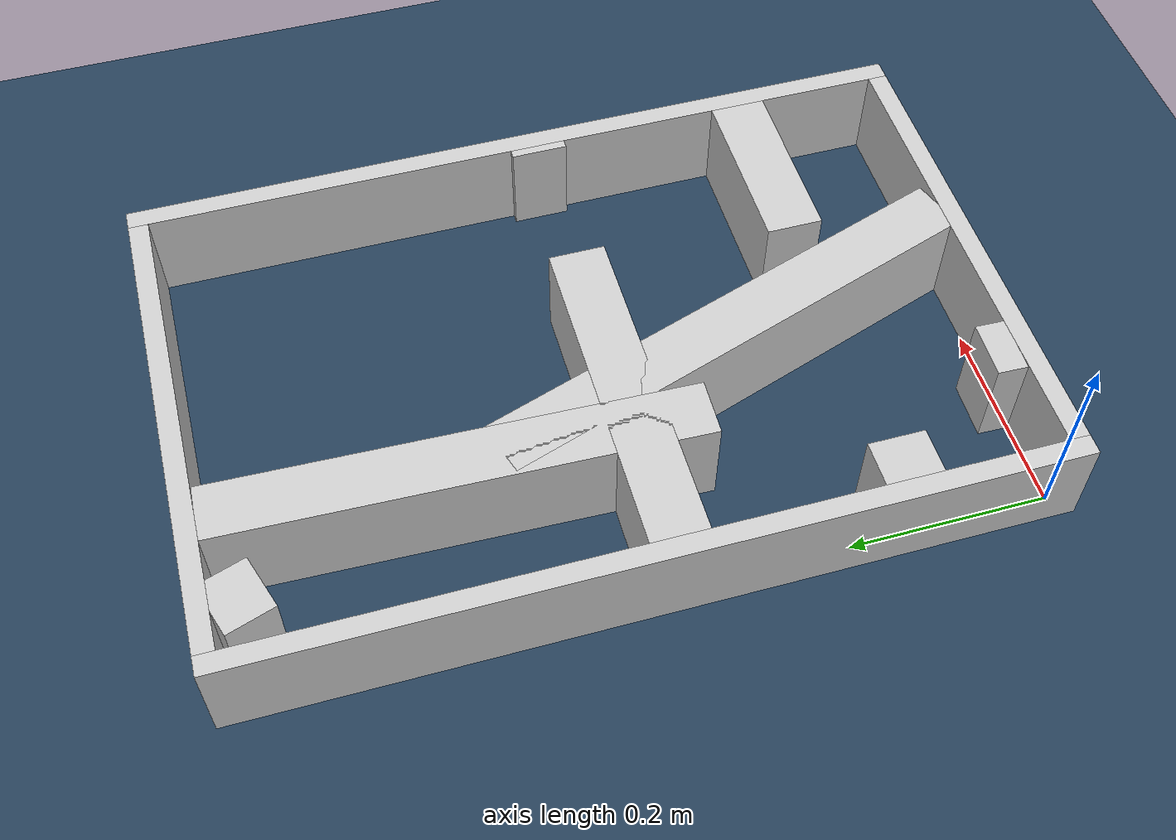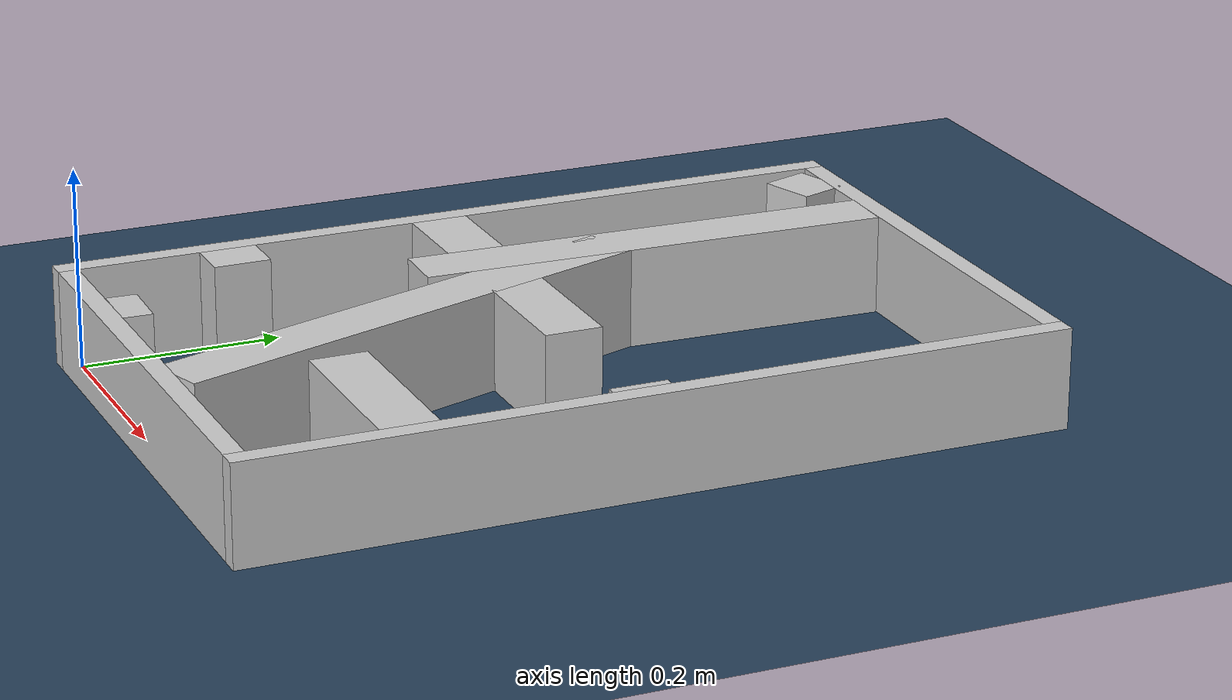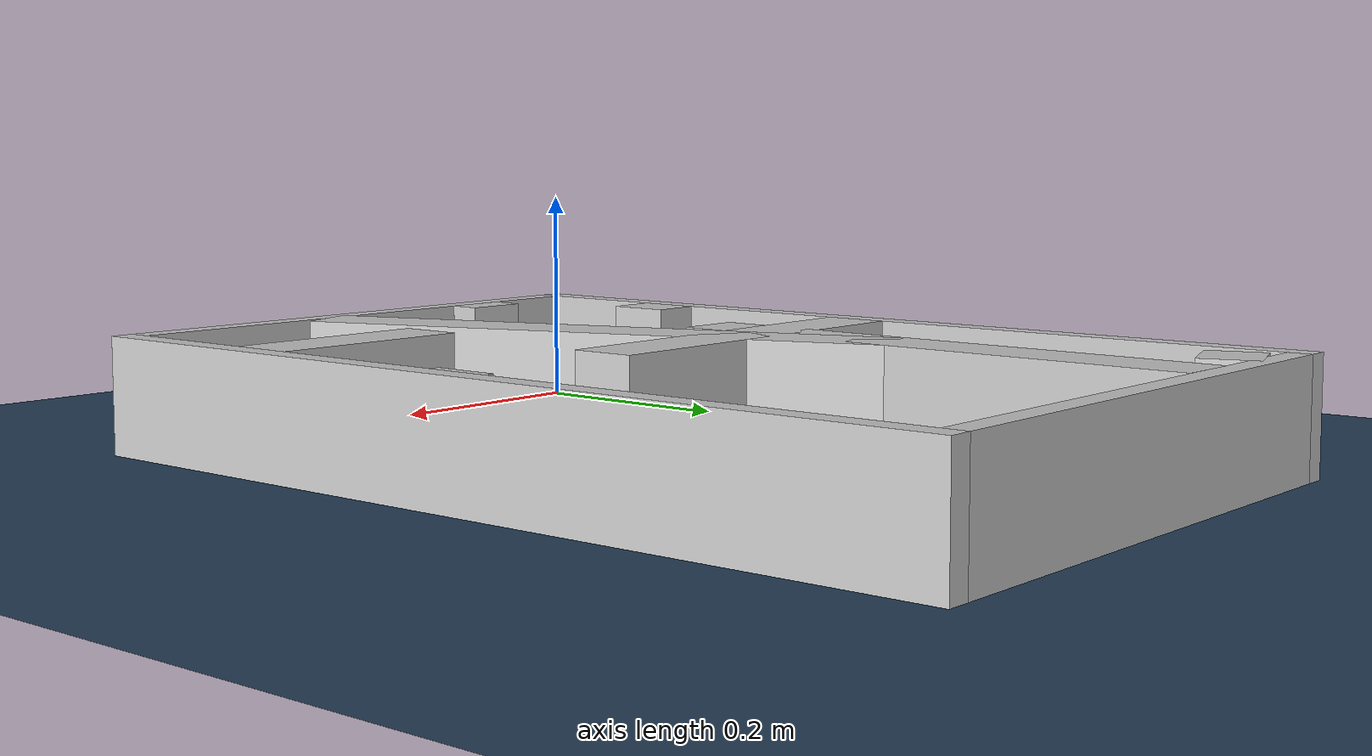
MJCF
<?xml version="1.0" ?>
<mujoco model="generated_real_template">
  <compiler angle="degree"/>
  <option timestep="0.002" integrator="implicitfast" iterations="100" cone="elliptic"/>
  <default>
    <geom density="1"/>
  </default>
  <asset>
    <texture builtin="gradient" height="3072" rgb1="0.3 0.5 0.7" rgb2="0 0 0" type="skybox" width="512"/>
    <texture builtin="checker" height="300" mark="edge" markrgb="0.8 0.8 0.8" name="groundplane" rgb1="0.2 0.3 0.4" rgb2="0.1 0.2 0.3" type="2d" width="300"/>
    <material name="groundplane" reflectance="0.2" texrepeat="5 5" texture="groundplane" texuniform="true"/>
  </asset>
  <worldbody>
    <light dir="0 0 -1" directional="true" pos="0 0 1.5"/>
    <geom name="floor" type="plane" condim="4" friction="0.5 0.005 0.001" material="groundplane" size="0 0 0.05"/>
    <body name="walls">
      <geom name="wall_boundary_left" type="box" condim="4" friction="1.0 0.005 0.0001" rgba="0.8 0.8 0.8 1" pos="-0.010000 0.387500 0.050000" euler="0 0 0.000000" size="0.010000 0.407500 0.050000"/>
      <geom name="wall_boundary_right" type="box" condim="4" friction="1.0 0.005 0.0001" rgba="0.8 0.8 0.8 1" pos="0.500000 0.387500 0.050000" euler="0 0 0.000000" size="0.010000 0.407500 0.050000"/>
      <geom name="wall_boundary_bottom" type="box" condim="4" friction="1.0 0.005 0.0001" rgba="0.8 0.8 0.8 1" pos="0.245000 -0.010000 0.050000" euler="0 0 0.000000" size="0.245000 0.010000 0.050000"/>
      <geom name="wall_boundary_top" type="box" condim="4" friction="1.0 0.005 0.0001" rgba="0.8 0.8 0.8 1" pos="0.245000 0.785000 0.050000" euler="0 0 0.000000" size="0.245000 0.010000 0.050000"/>
      <geom name="wall_inner_1_1" type="box" condim="4" friction="1.0 0.005 0.0001" rgba="0.8 0.8 0.8 1" pos="0.214743 0.250038 0.050000" euler="0 0 108.600958" size="0.263819 0.028500 0.050000"/>
      <geom name="wall_inner_1_2" type="box" condim="4" friction="1.0 0.005 0.0001" rgba="0.8 0.8 0.8 1" pos="0.046024 0.751348 0.050000" euler="0 0 108.600958" size="0.024956 0.028500 0.050000"/>
      <geom name="wall_inner_2_1" type="box" condim="4" friction="1.0 0.005 0.0001" rgba="0.8 0.8 0.8 1" pos="0.168846 0.370695 0.050000" euler="0 0 0.000000" size="0.168846 0.028500 0.050000"/>
      <geom name="wall_inner_2_2" type="box" condim="4" friction="1.0 0.005 0.0001" rgba="0.8 0.8 0.8 1" pos="0.485605 0.370695 0.050000" euler="0 0 0.000000" size="0.004395 0.028500 0.050000"/>
      <geom name="wall_inner_3_1" type="box" condim="4" friction="1.0 0.005 0.0001" rgba="0.8 0.8 0.8 1" pos="0.022782 0.150223 0.050000" euler="0 0 0.000000" size="0.022782 0.028500 0.050000"/>
      <geom name="wall_inner_3_2" type="box" condim="4" friction="1.0 0.005 0.0001" rgba="0.8 0.8 0.8 1" pos="0.400526 0.150223 0.050000" euler="0 0 0.000000" size="0.089474 0.028500 0.050000"/>
      <geom name="wall_inner_4_1" type="box" condim="4" friction="1.0 0.005 0.0001" rgba="0.8 0.8 0.8 1" pos="0.114769 0.015122 0.050000" euler="0 0 88.321697" size="0.015128 0.028500 0.050000"/>
      <geom name="wall_inner_4_2" type="box" condim="4" friction="1.0 0.005 0.0001" rgba="0.8 0.8 0.8 1" pos="0.130080 0.537659 0.050000" euler="0 0 88.321697" size="0.237442 0.028500 0.050000"/>
    </body>
  </worldbody>
</mujoco>
